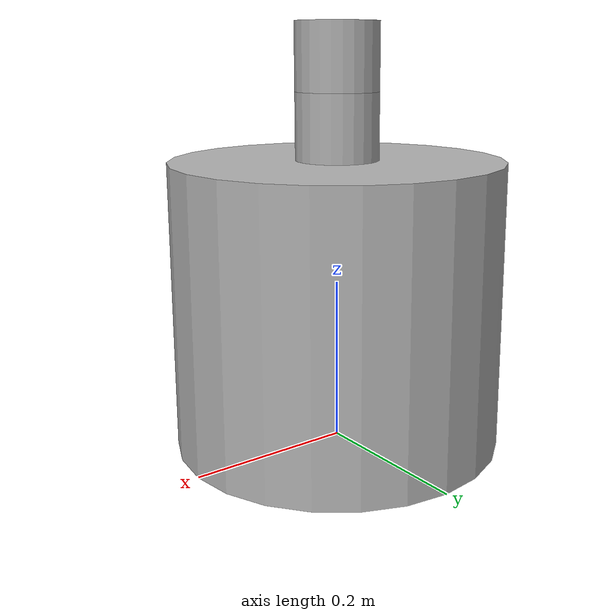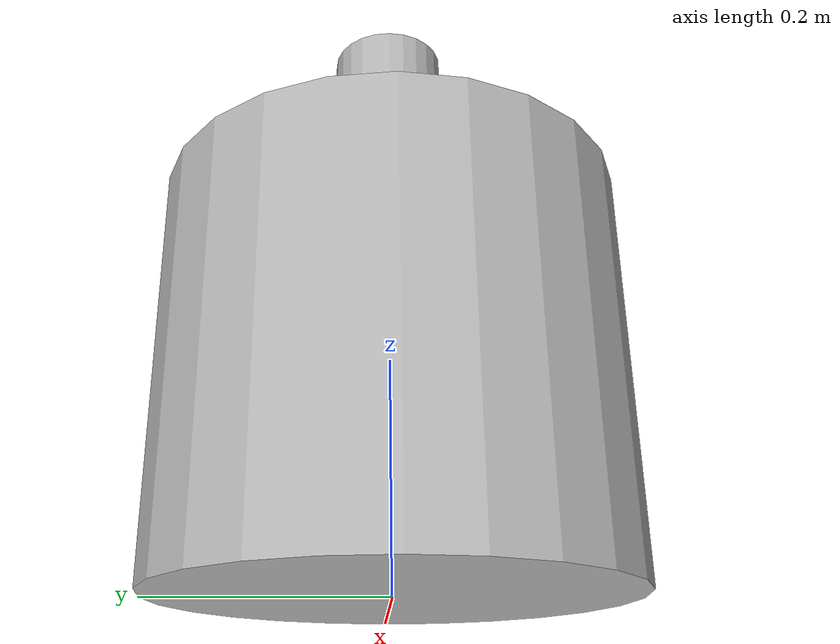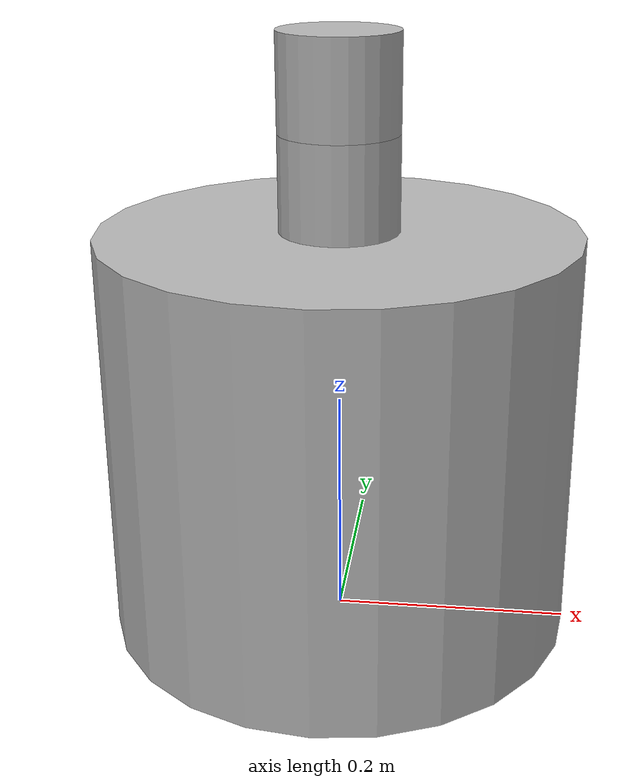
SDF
<?xml version='1.0'?>
<sdf version="1.4">
  <model name="eurobot_dummy">
    <pose>0 0 0.175 0 0 0</pose>
    <static>true</static>
    <link name="base_link_dummy">
      <inertial>
        <pose>0 0 0 0 0 0</pose>
        <mass>1.0</mass>
        <inertia> <!-- inertias are tricky to compute -->
          <!-- http://gazebosim.org/tutorials?tut=inertia&cat=build_robot -->
          <ixx>0.083</ixx>       <!-- for a box: ixx = 0.083 * mass * (y*y + z*z) -->
          <ixy>0.0</ixy>         <!-- for a box: ixy = 0 -->
          <ixz>0.0</ixz>         <!-- for a box: ixz = 0 -->
          <iyy>0.083</iyy>       <!-- for a box: iyy = 0.083 * mass * (x*x + z*z) -->
          <iyz>0.0</iyz>         <!-- for a box: iyz = 0 -->
          <izz>0.083</izz>       <!-- for a box: izz = 0.083 * mass * (x*x + y*y) -->
        </inertia>
      </inertial>
      <collision name="collision">
        <pose>0 0 0 0 0 0</pose>
        <geometry>
          <cylinder>
            <length>0.35</length>
            <radius>0.2</radius>
          </cylinder>
        </geometry>
      </collision>
      <visual name="visual">
        <pose>0 0 0 0 0 0</pose>
        <geometry>
          <cylinder>
            <length>0.35</length>
            <radius>0.2</radius>
          </cylinder>
        </geometry>
      </visual>
    </link>

    <link name="top_one_dummy">
      <inertial>
        <pose>0 0 0.215 0 0 0</pose>
        <mass>1.0</mass>
        <inertia> <!-- inertias are tricky to compute -->
          <!-- http://gazebosim.org/tutorials?tut=inertia&cat=build_robot -->
          <ixx>0.083</ixx>       <!-- for a box: ixx = 0.083 * mass * (y*y + z*z) -->
          <ixy>0.0</ixy>         <!-- for a box: ixy = 0 -->
          <ixz>0.0</ixz>         <!-- for a box: ixz = 0 -->
          <iyy>0.083</iyy>       <!-- for a box: iyy = 0.083 * mass * (x*x + z*z) -->
          <iyz>0.0</iyz>         <!-- for a box: iyz = 0 -->
          <izz>0.083</izz>       <!-- for a box: izz = 0.083 * mass * (x*x + y*y) -->
        </inertia>
      </inertial>
      <collision name="collision">
        <pose>0 0 0.215 0 0 0</pose>
        <geometry>
          <cylinder>
            <length>0.08</length>
            <radius>0.05</radius>
          </cylinder>
        </geometry>
      </collision>
      <visual name="visual">
        <pose>0 0 0.215 0 0 0</pose>
        <geometry>
          <cylinder>
            <length>0.08</length>
            <radius>0.05</radius>
          </cylinder>
        </geometry>
      </visual>
    </link>

    <link name="top_two_dummy">
      <inertial>
        <pose>0 0 0.295 0 0 0</pose>
        <mass>1.0</mass>
        <inertia> <!-- inertias are tricky to compute -->
          <!-- http://gazebosim.org/tutorials?tut=inertia&cat=build_robot -->
          <ixx>0.083</ixx>       <!-- for a box: ixx = 0.083 * mass * (y*y + z*z) -->
          <ixy>0.0</ixy>         <!-- for a box: ixy = 0 -->
          <ixz>0.0</ixz>         <!-- for a box: ixz = 0 -->
          <iyy>0.083</iyy>       <!-- for a box: iyy = 0.083 * mass * (x*x + z*z) -->
          <iyz>0.0</iyz>         <!-- for a box: iyz = 0 -->
          <izz>0.083</izz>       <!-- for a box: izz = 0.083 * mass * (x*x + y*y) -->
        </inertia>
      </inertial>
      <collision name="collision">
        <pose>0 0 0.295 0 0 0</pose>
        <geometry>
          <cylinder>
            <length>0.08</length>
            <radius>0.05</radius>
          </cylinder>
        </geometry>
      </collision>
      <visual name="visual">
        <pose>0 0 0.295 0 0 0</pose>
        <geometry>
          <cylinder>
            <length>0.08</length>
            <radius>0.05</radius>
          </cylinder>
        </geometry>
      </visual>
    </link>
  </model>
</sdf>
